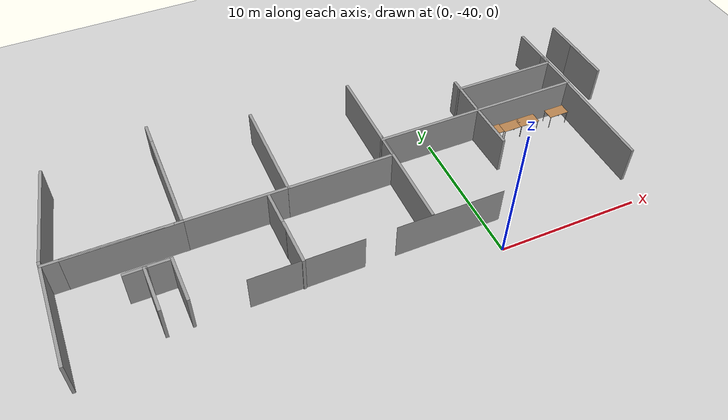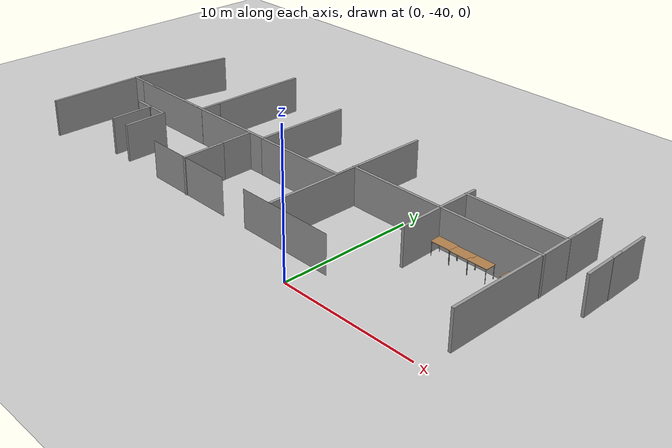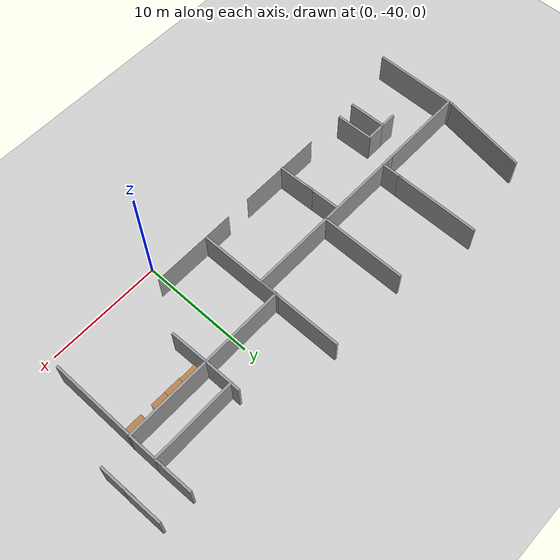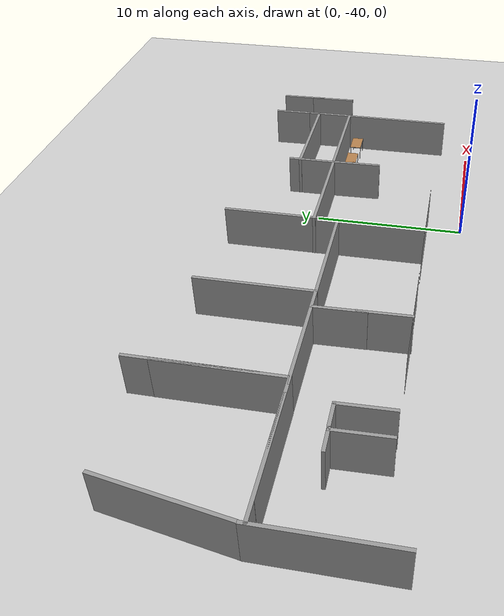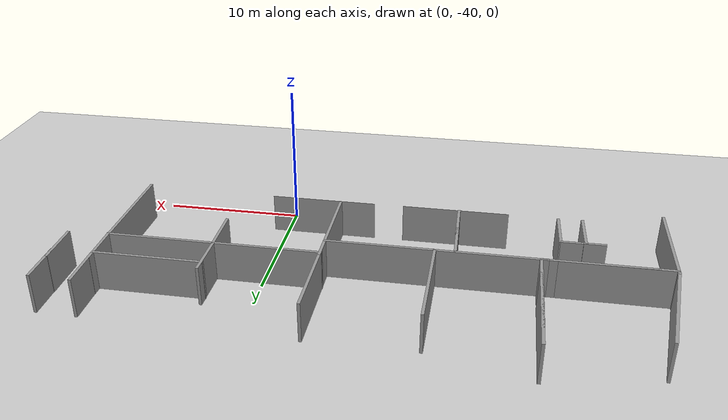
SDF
<sdf version="1.7">
 <world name="default">
  <model name="ground_plane">
   <static>1</static>
   <link name="link">
    <collision name="collision">
     <geometry><plane><normal>0 0 1</normal><size>100 100</size></plane></geometry>
     <surface>
      <contact><collide_bitmask>65535</collide_bitmask></contact>
      <friction><ode><mu>100</mu><mu2>50</mu2></ode></friction>
     </surface>
    </collision>
    <visual name="visual">
     <cast_shadows>0</cast_shadows>
     <geometry><plane><normal>0 0 1</normal><size>100 100</size></plane></geometry>
     <material>
      <script><uri>file://media/materials/scripts/gazebo.material</uri><name>Gazebo/Grey</name></script>
     </material>
    </visual>
   </link>
  </model>
  <model name="grey_wall_clone_4_clone_0_clone_clone_clone_0">
   <static>1</static>
   <link name="link">
    <pose>0 0 1.4 0 -0 0</pose>
    <collision name="collision"><geometry><box><size>7.5 0.2 2.8</size></box></geometry></collision>
    <visual name="visual">
     <cast_shadows>0</cast_shadows>
     <geometry><box><size>7.5 0.2 2.8</size></box></geometry>
     <material>
      <script>
       <uri>model://grey_wall/materials/scripts</uri>
       <uri>model://grey_wall/materials/textures</uri>
       <name>vrc/grey_wall</name>
      </script>
     </material>
    </visual>
   </link>
   <pose>-26.0476 -27.9911 0 0 -0 1.40189</pose>
  </model>
  <model name="grey_wall_0">
   <static>1</static>
   <link name="link">
    <pose>0 0 1.4 0 -0 0</pose>
    <collision name="collision"><geometry><box><size>7.5 0.2 2.8</size></box></geometry></collision>
    <visual name="visual">
     <cast_shadows>0</cast_shadows>
     <geometry><box><size>7.5 0.2 2.8</size></box></geometry>
     <material>
      <script>
       <uri>model://grey_wall/materials/scripts</uri>
       <uri>model://grey_wall/materials/textures</uri>
       <name>vrc/grey_wall</name>
      </script>
     </material>
    </visual>
   </link>
   <pose>-26.6933 -35.4117 0 0 -0 1.5708</pose>
  </model>
  <model name="grey_wall_1">
   <static>1</static>
   <link name="link">
    <pose>0 0 1.4 0 -0 0</pose>
    <collision name="collision"><geometry><box><size>7.5 0.2 2.8</size></box></geometry></collision>
    <visual name="visual">
     <cast_shadows>0</cast_shadows>
     <geometry><box><size>7.5 0.2 2.8</size></box></geometry>
     <material>
      <script>
       <uri>model://grey_wall/materials/scripts</uri>
       <uri>model://grey_wall/materials/textures</uri>
       <name>vrc/grey_wall</name>
      </script>
     </material>
    </visual>
   </link>
   <pose>-23.0024 -32.0318 0 0 -0 0</pose>
  </model>
  <model name="grey_wall_1_clone">
   <static>1</static>
   <link name="link">
    <pose>0 0 1.4 0 -0 0</pose>
    <collision name="collision"><geometry><box><size>7.5 0.2 2.8</size></box></geometry></collision>
    <visual name="visual">
     <cast_shadows>0</cast_shadows>
     <geometry><box><size>7.5 0.2 2.8</size></box></geometry>
     <material>
      <script>
       <uri>model://grey_wall/materials/scripts</uri>
       <uri>model://grey_wall/materials/textures</uri>
       <name>vrc/grey_wall</name>
      </script>
     </material>
    </visual>
   </link>
   <pose>-21.8571 -32.0378 0 0 -0 0</pose>
  </model>
  <model name="grey_wall_0_clone_clone">
   <static>1</static>
   <link name="link">
    <pose>0 0 1.4 0 -0 0</pose>
    <collision name="collision"><geometry><box><size>7.5 0.2 2.8</size></box></geometry></collision>
    <visual name="visual">
     <cast_shadows>0</cast_shadows>
     <geometry><box><size>7.5 0.2 2.8</size></box></geometry>
     <material>
      <script>
       <uri>model://grey_wall/materials/scripts</uri>
       <uri>model://grey_wall/materials/textures</uri>
       <name>vrc/grey_wall</name>
      </script>
     </material>
    </visual>
   </link>
   <pose>-18.1917 -28.2741 0 0 -0 1.5708</pose>
  </model>
  <model name="grey_wall_1_clone_clone">
   <static>1</static>
   <link name="link">
    <pose>0 0 1.4 0 -0 0</pose>
    <collision name="collision"><geometry><box><size>7.5 0.2 2.8</size></box></geometry></collision>
    <visual name="visual">
     <cast_shadows>0</cast_shadows>
     <geometry><box><size>7.5 0.2 2.8</size></box></geometry>
     <material>
      <script>
       <uri>model://grey_wall/materials/scripts</uri>
       <uri>model://grey_wall/materials/textures</uri>
       <name>vrc/grey_wall</name>
      </script>
     </material>
    </visual>
   </link>
   <pose>-14.9465 -32.0283 0 0 -0 0</pose>
  </model>
  <model name="grey_wall_0_clone_clone_clone">
   <static>1</static>
   <link name="link">
    <pose>0 0 1.4 0 -0 0</pose>
    <collision name="collision"><geometry><box><size>7.5 0.2 2.8</size></box></geometry></collision>
    <visual name="visual">
     <cast_shadows>0</cast_shadows>
     <geometry><box><size>7.5 0.2 2.8</size></box></geometry>
     <material>
      <script>
       <uri>model://grey_wall/materials/scripts</uri>
       <uri>model://grey_wall/materials/textures</uri>
       <name>vrc/grey_wall</name>
      </script>
     </material>
    </visual>
   </link>
   <pose>-11.3122 -28.3763 0 0 -0 1.5708</pose>
  </model>
  <model name="grey_wall_1_clone_clone_clone">
   <static>1</static>
   <link name="link">
    <pose>0 0 1.4 0 -0 0</pose>
    <collision name="collision"><geometry><box><size>7.5 0.2 2.8</size></box></geometry></collision>
    <visual name="visual">
     <cast_shadows>0</cast_shadows>
     <geometry><box><size>7.5 0.2 2.8</size></box></geometry>
     <material>
      <script>
       <uri>model://grey_wall/materials/scripts</uri>
       <uri>model://grey_wall/materials/textures</uri>
       <name>vrc/grey_wall</name>
      </script>
     </material>
    </visual>
   </link>
   <pose>-7.60364 -32.0391 0 0 -0 0</pose>
  </model>
  <model name="grey_wall_0_clone_clone_clone_1_clone">
   <static>1</static>
   <link name="link">
    <pose>0 0 1.4 0 -0 0</pose>
    <collision name="collision"><geometry><box><size>7.5 0.2 2.8</size></box></geometry></collision>
    <visual name="visual">
     <cast_shadows>0</cast_shadows>
     <geometry><box><size>7.5 0.2 2.8</size></box></geometry>
     <material>
      <script>
       <uri>model://grey_wall/materials/scripts</uri>
       <uri>model://grey_wall/materials/textures</uri>
       <name>vrc/grey_wall</name>
      </script>
     </material>
    </visual>
   </link>
   <pose>-3.96417 -28.2463 0 0 -0 1.5708</pose>
  </model>
  <model name="grey_wall_0_clone_clone_clone_0">
   <static>1</static>
   <link name="link">
    <pose>0 0 1.4 0 -0 0</pose>
    <collision name="collision"><geometry><box><size>7.5 0.2 2.8</size></box></geometry></collision>
    <visual name="visual">
     <cast_shadows>0</cast_shadows>
     <geometry><box><size>7.5 0.2 2.8</size></box></geometry>
     <material>
      <script>
       <uri>model://grey_wall/materials/scripts</uri>
       <uri>model://grey_wall/materials/textures</uri>
       <name>vrc/grey_wall</name>
      </script>
     </material>
    </visual>
   </link>
   <pose>-18.1803 -26.7144 0 0 -0 1.5708</pose>
  </model>
  <model name="grey_wall_1_clone_clone_clone_clone">
   <static>1</static>
   <link name="link">
    <pose>0 0 1.4 0 -0 0</pose>
    <collision name="collision"><geometry><box><size>7.5 0.2 2.8</size></box></geometry></collision>
    <visual name="visual">
     <cast_shadows>0</cast_shadows>
     <geometry><box><size>7.5 0.2 2.8</size></box></geometry>
     <material>
      <script>
       <uri>model://grey_wall/materials/scripts</uri>
       <uri>model://grey_wall/materials/textures</uri>
       <name>vrc/grey_wall</name>
      </script>
     </material>
    </visual>
   </link>
   <pose>-0.339107 -30.4881 0 0 -0 0</pose>
  </model>
  <model name="half_grey_wall_clone_clone_clone_clone">
   <link name="link">
    <pose>0 0 1.4 0 -0 0</pose>
    <inertial>
     <mass>1</mass>
     <inertia><ixx>1</ixx><ixy>0</ixy><ixz>0</ixz><iyy>1</iyy><iyz>0</iyz><izz>1</izz></inertia>
    </inertial>
    <visual name="visual">
     <cast_shadows>0</cast_shadows>
     <geometry><box><size>3.3 0.2 2.8</size></box></geometry>
     <material>
      <script>
       <uri>model://grey_wall/materials/scripts</uri>
       <uri>model://grey_wall/materials/textures</uri>
       <name>vrc/grey_wall</name>
      </script>
      <shader type="pixel"><normal_map>__default__</normal_map></shader>
      <ambient>1 1 1 1</ambient>
      <diffuse>1 1 1 1</diffuse>
      <specular>0 0 0 1</specular>
      <emissive>0 0 0 1</emissive>
     </material>
    </visual>
    <collision name="collision">
     <geometry><box><size>7.5 0.2 2.8</size></box></geometry>
     <surface>
      <friction>
       <ode><mu>1</mu><mu2>1</mu2><fdir1>0 0 0</fdir1><slip1>0</slip1><slip2>0</slip2></ode>
       <torsional>
        <coefficient>1</coefficient>
        <patch_radius>0</patch_radius>
        <surface_radius>0</surface_radius>
        <use_patch_radius>1</use_patch_radius>
        <ode><slip>0</slip></ode>
       </torsional>
      </friction>
      <bounce><restitution_coefficient>0</restitution_coefficient><threshold>1e+06</threshold></bounce>
      <contact>
       <collide_without_contact>0</collide_without_contact>
       <collide_without_contact_bitmask>1</collide_without_contact_bitmask>
       <collide_bitmask>1</collide_bitmask>
       <ode>
        <soft_cfm>0</soft_cfm>
        <soft_erp>0.2</soft_erp>
        <kp>1e+13</kp>
        <kd>1</kd>
        <max_vel>0.01</max_vel>
        <min_depth>0</min_depth>
       </ode>
       <bullet>
        <split_impulse>1</split_impulse>
        <split_impulse_penetration_threshold>-0.01</split_impulse_penetration_threshold>
        <soft_cfm>0</soft_cfm>
        <soft_erp>0.2</soft_erp>
        <kp>1e+13</kp>
        <kd>1</kd>
       </bullet>
      </contact>
     </surface>
    </collision>
   </link>
   <static>1</static>
   <pose>3.29729 -28.8904 0 0 0 -1.56862</pose>
  </model>
  <model name="grey_wall_1_clone_clone_clone_clone_clone">
   <static>1</static>
   <link name="link">
    <pose>0 0 1.4 0 -0 0</pose>
    <collision name="collision"><geometry><box><size>7.5 0.2 2.8</size></box></geometry></collision>
    <visual name="visual">
     <cast_shadows>0</cast_shadows>
     <geometry><box><size>7.5 0.2 2.8</size></box></geometry>
     <material>
      <script>
       <uri>model://grey_wall/materials/scripts</uri>
       <uri>model://grey_wall/materials/textures</uri>
       <name>vrc/grey_wall</name>
      </script>
     </material>
    </visual>
   </link>
   <pose>7.06177 -30.4838 0 0 -0 0</pose>
  </model>
  <model name="grey_wall_1_clone_clone_clone_clone_clone_clone">
   <static>1</static>
   <link name="link">
    <pose>0 0 1.4 0 -0 0</pose>
    <collision name="collision"><geometry><box><size>7.5 0.2 2.8</size></box></geometry></collision>
    <visual name="visual">
     <cast_shadows>0</cast_shadows>
     <geometry><box><size>7.5 0.2 2.8</size></box></geometry>
     <material>
      <script>
       <uri>model://grey_wall/materials/scripts</uri>
       <uri>model://grey_wall/materials/textures</uri>
       <name>vrc/grey_wall</name>
      </script>
     </material>
    </visual>
   </link>
   <pose>6.92384 -28.0433 0 0 -0 0</pose>
  </model>
  <model name="half_grey_wall_clone_clone_0_clone_2">
   <link name="link">
    <pose>0 0 1.4 0 -0 0</pose>
    <inertial>
     <mass>1</mass>
     <inertia><ixx>1</ixx><ixy>0</ixy><ixz>0</ixz><iyy>1</iyy><iyz>0</iyz><izz>1</izz></inertia>
    </inertial>
    <visual name="visual">
     <cast_shadows>0</cast_shadows>
     <geometry><box><size>3.3 0.2 2.8</size></box></geometry>
     <material>
      <script>
       <uri>model://grey_wall/materials/scripts</uri>
       <uri>model://grey_wall/materials/textures</uri>
       <name>vrc/grey_wall</name>
      </script>
      <shader type="pixel"><normal_map>__default__</normal_map></shader>
      <ambient>1 1 1 1</ambient>
      <diffuse>1 1 1 1</diffuse>
      <specular>0 0 0 1</specular>
      <emissive>0 0 0 1</emissive>
     </material>
    </visual>
    <collision name="collision">
     <geometry><box><size>7.5 0.2 2.8</size></box></geometry>
     <surface>
      <friction>
       <ode><mu>1</mu><mu2>1</mu2><fdir1>0 0 0</fdir1><slip1>0</slip1><slip2>0</slip2></ode>
       <torsional>
        <coefficient>1</coefficient>
        <patch_radius>0</patch_radius>
        <surface_radius>0</surface_radius>
        <use_patch_radius>1</use_patch_radius>
        <ode><slip>0</slip></ode>
       </torsional>
      </friction>
      <bounce><restitution_coefficient>0</restitution_coefficient><threshold>1e+06</threshold></bounce>
      <contact>
       <collide_without_contact>0</collide_without_contact>
       <collide_without_contact_bitmask>1</collide_without_contact_bitmask>
       <collide_bitmask>1</collide_bitmask>
       <ode>
        <soft_cfm>0</soft_cfm>
        <soft_erp>0.2</soft_erp>
        <kp>1e+13</kp>
        <kd>1</kd>
        <max_vel>0.01</max_vel>
        <min_depth>0</min_depth>
       </ode>
       <bullet>
        <split_impulse>1</split_impulse>
        <split_impulse_penetration_threshold>-0.01</split_impulse_penetration_threshold>
        <soft_cfm>0</soft_cfm>
        <soft_erp>0.2</soft_erp>
        <kp>1e+13</kp>
        <kd>1</kd>
       </bullet>
      </contact>
     </surface>
    </collision>
   </link>
   <static>1</static>
   <pose>10.6733 -28.9112 0 0 0 -1.55647</pose>
  </model>
  <model name="grey_wall_0_clone_clone_clone_0_clone">
   <static>1</static>
   <link name="link">
    <pose>0 0 1.4 0 -0 0</pose>
    <collision name="collision"><geometry><box><size>7.5 0.2 2.8</size></box></geometry></collision>
    <visual name="visual">
     <cast_shadows>0</cast_shadows>
     <geometry><box><size>7.5 0.2 2.8</size></box></geometry>
     <material>
      <script>
       <uri>model://grey_wall/materials/scripts</uri>
       <uri>model://grey_wall/materials/textures</uri>
       <name>vrc/grey_wall</name>
      </script>
     </material>
    </visual>
   </link>
   <pose>10.6732 -34.2817 0 0 -0 1.5708</pose>
  </model>
  <model name="table">
   <static>1</static>
   <link name="link">
    <collision name="surface">
     <pose>0 0 1 0 -0 0</pose>
     <geometry><box><size>1.5 0.8 0.03</size></box></geometry>
     <surface><friction><ode><mu>0.6</mu><mu2>0.6</mu2></ode></friction></surface>
    </collision>
    <visual name="visual1">
     <pose>0 0 1 0 -0 0</pose>
     <geometry><box><size>1.5 0.8 0.03</size></box></geometry>
     <material>
      <script><uri>file://media/materials/scripts/gazebo.material</uri><name>Gazebo/Wood</name></script>
     </material>
    </visual>
    <collision name="front_left_leg">
     <pose>0.68 0.38 0.5 0 -0 0</pose>
     <geometry><cylinder><radius>0.02</radius><length>1</length></cylinder></geometry>
    </collision>
    <visual name="front_left_leg">
     <pose>0.68 0.38 0.5 0 -0 0</pose>
     <geometry><cylinder><radius>0.02</radius><length>1</length></cylinder></geometry>
     <material>
      <script><uri>file://media/materials/scripts/gazebo.material</uri><name>Gazebo/Grey</name></script>
     </material>
    </visual>
    <collision name="front_right_leg">
     <pose>0.68 -0.38 0.5 0 -0 0</pose>
     <geometry><cylinder><radius>0.02</radius><length>1</length></cylinder></geometry>
    </collision>
    <visual name="front_right_leg">
     <pose>0.68 -0.38 0.5 0 -0 0</pose>
     <geometry><cylinder><radius>0.02</radius><length>1</length></cylinder></geometry>
     <material>
      <script><uri>file://media/materials/scripts/gazebo.material</uri><name>Gazebo/Grey</name></script>
     </material>
    </visual>
    <collision name="back_right_leg">
     <pose>-0.68 -0.38 0.5 0 -0 0</pose>
     <geometry><cylinder><radius>0.02</radius><length>1</length></cylinder></geometry>
    </collision>
    <visual name="back_right_leg">
     <pose>-0.68 -0.38 0.5 0 -0 0</pose>
     <geometry><cylinder><radius>0.02</radius><length>1</length></cylinder></geometry>
     <material>
      <script><uri>file://media/materials/scripts/gazebo.material</uri><name>Gazebo/Grey</name></script>
     </material>
    </visual>
    <collision name="back_left_leg">
     <pose>-0.68 0.38 0.5 0 -0 0</pose>
     <geometry><cylinder><radius>0.02</radius><length>1</length></cylinder></geometry>
    </collision>
    <visual name="back_left_leg">
     <pose>-0.68 0.38 0.5 0 -0 0</pose>
     <geometry><cylinder><radius>0.02</radius><length>1</length></cylinder></geometry>
     <material>
      <script><uri>file://media/materials/scripts/gazebo.material</uri><name>Gazebo/Grey</name></script>
     </material>
    </visual>
   </link>
   <pose>4.37833 -31.1782 0 0 -0 0</pose>
  </model>
  <model name="table_clone">
   <static>1</static>
   <link name="link">
    <collision name="surface">
     <pose>0 0 1 0 -0 0</pose>
     <geometry><box><size>1.5 0.8 0.03</size></box></geometry>
     <surface><friction><ode><mu>0.6</mu><mu2>0.6</mu2></ode></friction></surface>
    </collision>
    <visual name="visual1">
     <pose>0 0 1 0 -0 0</pose>
     <geometry><box><size>1.5 0.8 0.03</size></box></geometry>
     <material>
      <script><uri>file://media/materials/scripts/gazebo.material</uri><name>Gazebo/Wood</name></script>
     </material>
    </visual>
    <collision name="front_left_leg">
     <pose>0.68 0.38 0.5 0 -0 0</pose>
     <geometry><cylinder><radius>0.02</radius><length>1</length></cylinder></geometry>
    </collision>
    <visual name="front_left_leg">
     <pose>0.68 0.38 0.5 0 -0 0</pose>
     <geometry><cylinder><radius>0.02</radius><length>1</length></cylinder></geometry>
     <material>
      <script><uri>file://media/materials/scripts/gazebo.material</uri><name>Gazebo/Grey</name></script>
     </material>
    </visual>
    <collision name="front_right_leg">
     <pose>0.68 -0.38 0.5 0 -0 0</pose>
     <geometry><cylinder><radius>0.02</radius><length>1</length></cylinder></geometry>
    </collision>
    <visual name="front_right_leg">
     <pose>0.68 -0.38 0.5 0 -0 0</pose>
     <geometry><cylinder><radius>0.02</radius><length>1</length></cylinder></geometry>
     <material>
      <script><uri>file://media/materials/scripts/gazebo.material</uri><name>Gazebo/Grey</name></script>
     </material>
    </visual>
    <collision name="back_right_leg">
     <pose>-0.68 -0.38 0.5 0 -0 0</pose>
     <geometry><cylinder><radius>0.02</radius><length>1</length></cylinder></geometry>
    </collision>
    <visual name="back_right_leg">
     <pose>-0.68 -0.38 0.5 0 -0 0</pose>
     <geometry><cylinder><radius>0.02</radius><length>1</length></cylinder></geometry>
     <material>
      <script><uri>file://media/materials/scripts/gazebo.material</uri><name>Gazebo/Grey</name></script>
     </material>
    </visual>
    <collision name="back_left_leg">
     <pose>-0.68 0.38 0.5 0 -0 0</pose>
     <geometry><cylinder><radius>0.02</radius><length>1</length></cylinder></geometry>
    </collision>
    <visual name="back_left_leg">
     <pose>-0.68 0.38 0.5 0 -0 0</pose>
     <geometry><cylinder><radius>0.02</radius><length>1</length></cylinder></geometry>
     <material>
      <script><uri>file://media/materials/scripts/gazebo.material</uri><name>Gazebo/Grey</name></script>
     </material>
    </visual>
   </link>
   <pose>5.83379 -31.2407 0 0 -0 0</pose>
  </model>
  <model name="table_clone_0">
   <static>1</static>
   <link name="link">
    <collision name="surface">
     <pose>0 0 1 0 -0 0</pose>
     <geometry><box><size>1.5 0.8 0.03</size></box></geometry>
     <surface><friction><ode><mu>0.6</mu><mu2>0.6</mu2></ode></friction></surface>
    </collision>
    <visual name="visual1">
     <pose>0 0 1 0 -0 0</pose>
     <geometry><box><size>1.5 0.8 0.03</size></box></geometry>
     <material>
      <script><uri>file://media/materials/scripts/gazebo.material</uri><name>Gazebo/Wood</name></script>
     </material>
    </visual>
    <collision name="front_left_leg">
     <pose>0.68 0.38 0.5 0 -0 0</pose>
     <geometry><cylinder><radius>0.02</radius><length>1</length></cylinder></geometry>
    </collision>
    <visual name="front_left_leg">
     <pose>0.68 0.38 0.5 0 -0 0</pose>
     <geometry><cylinder><radius>0.02</radius><length>1</length></cylinder></geometry>
     <material>
      <script><uri>file://media/materials/scripts/gazebo.material</uri><name>Gazebo/Grey</name></script>
     </material>
    </visual>
    <collision name="front_right_leg">
     <pose>0.68 -0.38 0.5 0 -0 0</pose>
     <geometry><cylinder><radius>0.02</radius><length>1</length></cylinder></geometry>
    </collision>
    <visual name="front_right_leg">
     <pose>0.68 -0.38 0.5 0 -0 0</pose>
     <geometry><cylinder><radius>0.02</radius><length>1</length></cylinder></geometry>
     <material>
      <script><uri>file://media/materials/scripts/gazebo.material</uri><name>Gazebo/Grey</name></script>
     </material>
    </visual>
    <collision name="back_right_leg">
     <pose>-0.68 -0.38 0.5 0 -0 0</pose>
     <geometry><cylinder><radius>0.02</radius><length>1</length></cylinder></geometry>
    </collision>
    <visual name="back_right_leg">
     <pose>-0.68 -0.38 0.5 0 -0 0</pose>
     <geometry><cylinder><radius>0.02</radius><length>1</length></cylinder></geometry>
     <material>
      <script><uri>file://media/materials/scripts/gazebo.material</uri><name>Gazebo/Grey</name></script>
     </material>
    </visual>
    <collision name="back_left_leg">
     <pose>-0.68 0.38 0.5 0 -0 0</pose>
     <geometry><cylinder><radius>0.02</radius><length>1</length></cylinder></geometry>
    </collision>
    <visual name="back_left_leg">
     <pose>-0.68 0.38 0.5 0 -0 0</pose>
     <geometry><cylinder><radius>0.02</radius><length>1</length></cylinder></geometry>
     <material>
      <script><uri>file://media/materials/scripts/gazebo.material</uri><name>Gazebo/Grey</name></script>
     </material>
    </visual>
   </link>
   <pose>7.16269 -31.2407 0 0 -0 0</pose>
  </model>
  <model name="table_clone_0_clone">
   <static>1</static>
   <link name="link">
    <collision name="surface">
     <pose>0 0 1 0 -0 0</pose>
     <geometry><box><size>1.5 0.8 0.03</size></box></geometry>
     <surface><friction><ode><mu>0.6</mu><mu2>0.6</mu2></ode></friction></surface>
    </collision>
    <visual name="visual1">
     <pose>0 0 1 0 -0 0</pose>
     <geometry><box><size>1.5 0.8 0.03</size></box></geometry>
     <material>
      <script><uri>file://media/materials/scripts/gazebo.material</uri><name>Gazebo/Wood</name></script>
     </material>
    </visual>
    <collision name="front_left_leg">
     <pose>0.68 0.38 0.5 0 -0 0</pose>
     <geometry><cylinder><radius>0.02</radius><length>1</length></cylinder></geometry>
    </collision>
    <visual name="front_left_leg">
     <pose>0.68 0.38 0.5 0 -0 0</pose>
     <geometry><cylinder><radius>0.02</radius><length>1</length></cylinder></geometry>
     <material>
      <script><uri>file://media/materials/scripts/gazebo.material</uri><name>Gazebo/Grey</name></script>
     </material>
    </visual>
    <collision name="front_right_leg">
     <pose>0.68 -0.38 0.5 0 -0 0</pose>
     <geometry><cylinder><radius>0.02</radius><length>1</length></cylinder></geometry>
    </collision>
    <visual name="front_right_leg">
     <pose>0.68 -0.38 0.5 0 -0 0</pose>
     <geometry><cylinder><radius>0.02</radius><length>1</length></cylinder></geometry>
     <material>
      <script><uri>file://media/materials/scripts/gazebo.material</uri><name>Gazebo/Grey</name></script>
     </material>
    </visual>
    <collision name="back_right_leg">
     <pose>-0.68 -0.38 0.5 0 -0 0</pose>
     <geometry><cylinder><radius>0.02</radius><length>1</length></cylinder></geometry>
    </collision>
    <visual name="back_right_leg">
     <pose>-0.68 -0.38 0.5 0 -0 0</pose>
     <geometry><cylinder><radius>0.02</radius><length>1</length></cylinder></geometry>
     <material>
      <script><uri>file://media/materials/scripts/gazebo.material</uri><name>Gazebo/Grey</name></script>
     </material>
    </visual>
    <collision name="back_left_leg">
     <pose>-0.68 0.38 0.5 0 -0 0</pose>
     <geometry><cylinder><radius>0.02</radius><length>1</length></cylinder></geometry>
    </collision>
    <visual name="back_left_leg">
     <pose>-0.68 0.38 0.5 0 -0 0</pose>
     <geometry><cylinder><radius>0.02</radius><length>1</length></cylinder></geometry>
     <material>
      <script><uri>file://media/materials/scripts/gazebo.material</uri><name>Gazebo/Grey</name></script>
     </material>
    </visual>
   </link>
   <pose>9.61483 -31.2737 0 0 -0 0</pose>
  </model>
  <model name="grey_wall_0_clone_clone_clone_0_clone_0">
   <static>1</static>
   <link name="link">
    <pose>0 0 1.4 0 -0 0</pose>
    <collision name="collision"><geometry><box><size>7.5 0.2 2.8</size></box></geometry></collision>
    <visual name="visual">
     <cast_shadows>0</cast_shadows>
     <geometry><box><size>7.5 0.2 2.8</size></box></geometry>
     <material>
      <script>
       <uri>model://grey_wall/materials/scripts</uri>
       <uri>model://grey_wall/materials/textures</uri>
       <name>vrc/grey_wall</name>
      </script>
     </material>
    </visual>
   </link>
   <pose>-3.9525 -33.9249 0 0 -0 1.5708</pose>
  </model>
  <model name="slim_grey_wall">
   <link name="link">
    <pose>0 0 1.4 0 -0 0</pose>
    <inertial>
     <mass>1</mass>
     <inertia><ixx>1</ixx><ixy>0</ixy><ixz>0</ixz><iyy>1</iyy><iyz>0</iyz><izz>1</izz></inertia>
    </inertial>
    <visual name="visual">
     <cast_shadows>0</cast_shadows>
     <geometry><box><size>7.5 0.0001 2.8</size></box></geometry>
     <material>
      <script>
       <uri>model://grey_wall/materials/scripts</uri>
       <uri>model://grey_wall/materials/textures</uri>
       <name>vrc/grey_wall</name>
      </script>
      <shader type="pixel"><normal_map>__default__</normal_map></shader>
      <ambient>1 1 1 1</ambient>
      <diffuse>1 1 1 1</diffuse>
      <specular>0 0 0 1</specular>
      <emissive>0 0 0 1</emissive>
     </material>
    </visual>
    <collision name="collision">
     <geometry><box><size>7.5 0.2 2.8</size></box></geometry>
     <surface>
      <friction>
       <ode><mu>1</mu><mu2>1</mu2><fdir1>0 0 0</fdir1><slip1>0</slip1><slip2>0</slip2></ode>
       <torsional>
        <coefficient>1</coefficient>
        <patch_radius>0</patch_radius>
        <surface_radius>0</surface_radius>
        <use_patch_radius>1</use_patch_radius>
        <ode><slip>0</slip></ode>
       </torsional>
      </friction>
      <bounce><restitution_coefficient>0</restitution_coefficient><threshold>1e+06</threshold></bounce>
      <contact>
       <collide_without_contact>0</collide_without_contact>
       <collide_without_contact_bitmask>1</collide_without_contact_bitmask>
       <collide_bitmask>1</collide_bitmask>
       <ode>
        <soft_cfm>0</soft_cfm>
        <soft_erp>0.2</soft_erp>
        <kp>1e+13</kp>
        <kd>1</kd>
        <max_vel>0.01</max_vel>
        <min_depth>0</min_depth>
       </ode>
       <bullet>
        <split_impulse>1</split_impulse>
        <split_impulse_penetration_threshold>-0.01</split_impulse_penetration_threshold>
        <soft_cfm>0</soft_cfm>
        <soft_erp>0.2</soft_erp>
        <kp>1e+13</kp>
        <kd>1</kd>
       </bullet>
      </contact>
     </surface>
    </collision>
   </link>
   <static>1</static>
   <pose>-2.6753 -37.7102 0 0 -0 0</pose>
  </model>
  <model name="slim_grey_wall_clone">
   <link name="link">
    <pose>0 0 1.4 0 -0 0</pose>
    <inertial>
     <mass>1</mass>
     <inertia><ixx>1</ixx><ixy>0</ixy><ixz>0</ixz><iyy>1</iyy><iyz>0</iyz><izz>1</izz></inertia>
    </inertial>
    <visual name="visual">
     <cast_shadows>0</cast_shadows>
     <geometry><box><size>7.5 0.0001 2.8</size></box></geometry>
     <material>
      <script>
       <uri>model://grey_wall/materials/scripts</uri>
       <uri>model://grey_wall/materials/textures</uri>
       <name>vrc/grey_wall</name>
      </script>
      <shader type="pixel"><normal_map>__default__</normal_map></shader>
      <ambient>1 1 1 1</ambient>
      <diffuse>1 1 1 1</diffuse>
      <specular>0 0 0 1</specular>
      <emissive>0 0 0 1</emissive>
     </material>
    </visual>
    <collision name="collision">
     <geometry><box><size>7.5 0.2 2.8</size></box></geometry>
     <surface>
      <friction>
       <ode><mu>1</mu><mu2>1</mu2><fdir1>0 0 0</fdir1><slip1>0</slip1><slip2>0</slip2></ode>
       <torsional>
        <coefficient>1</coefficient>
        <patch_radius>0</patch_radius>
        <surface_radius>0</surface_radius>
        <use_patch_radius>1</use_patch_radius>
        <ode><slip>0</slip></ode>
       </torsional>
      </friction>
      <bounce><restitution_coefficient>0</restitution_coefficient><threshold>1e+06</threshold></bounce>
      <contact>
       <collide_without_contact>0</collide_without_contact>
       <collide_without_contact_bitmask>1</collide_without_contact_bitmask>
       <collide_bitmask>1</collide_bitmask>
       <ode>
        <soft_cfm>0</soft_cfm>
        <soft_erp>0.2</soft_erp>
        <kp>1e+13</kp>
        <kd>1</kd>
        <max_vel>0.01</max_vel>
        <min_depth>0</min_depth>
       </ode>
       <bullet>
        <split_impulse>1</split_impulse>
        <split_impulse_penetration_threshold>-0.01</split_impulse_penetration_threshold>
        <soft_cfm>0</soft_cfm>
        <soft_erp>0.2</soft_erp>
        <kp>1e+13</kp>
        <kd>1</kd>
       </bullet>
      </contact>
     </surface>
    </collision>
   </link>
   <static>1</static>
   <pose>-12.2446 -37.7283 0 0 -0 0</pose>
  </model>
  <model name="half_grey_wall_clone_clone_0_clone_clone_clone_clone_0_clone_0_clone">
   <link name="link">
    <pose>0 0 1.4 0 -0 0</pose>
    <inertial>
     <mass>1</mass>
     <inertia><ixx>1</ixx><ixy>0</ixy><ixz>0</ixz><iyy>1</iyy><iyz>0</iyz><izz>1</izz></inertia>
    </inertial>
    <visual name="visual">
     <cast_shadows>0</cast_shadows>
     <geometry><box><size>3.3 0.2 2.8</size></box></geometry>
     <material>
      <script>
       <uri>model://grey_wall/materials/scripts</uri>
       <uri>model://grey_wall/materials/textures</uri>
       <name>vrc/grey_wall</name>
      </script>
      <shader type="pixel"><normal_map>__default__</normal_map></shader>
      <ambient>1 1 1 1</ambient>
      <diffuse>1 1 1 1</diffuse>
      <specular>0 0 0 1</specular>
      <emissive>0 0 0 1</emissive>
     </material>
    </visual>
    <collision name="collision">
     <geometry><box><size>3.3 0.2 2.8</size></box></geometry>
     <surface>
      <friction>
       <ode><mu>1</mu><mu2>1</mu2><fdir1>0 0 0</fdir1><slip1>0</slip1><slip2>0</slip2></ode>
       <torsional>
        <coefficient>1</coefficient>
        <patch_radius>0</patch_radius>
        <surface_radius>0</surface_radius>
        <use_patch_radius>1</use_patch_radius>
        <ode><slip>0</slip></ode>
       </torsional>
      </friction>
      <bounce><restitution_coefficient>0</restitution_coefficient><threshold>1e+06</threshold></bounce>
      <contact>
       <collide_without_contact>0</collide_without_contact>
       <collide_without_contact_bitmask>1</collide_without_contact_bitmask>
       <collide_bitmask>1</collide_bitmask>
       <ode>
        <soft_cfm>0</soft_cfm>
        <soft_erp>0.2</soft_erp>
        <kp>1e+13</kp>
        <kd>1</kd>
        <max_vel>0.01</max_vel>
        <min_depth>0</min_depth>
       </ode>
       <bullet>
        <split_impulse>1</split_impulse>
        <split_impulse_penetration_threshold>-0.01</split_impulse_penetration_threshold>
        <soft_cfm>0</soft_cfm>
        <soft_erp>0.2</soft_erp>
        <kp>1e+13</kp>
        <kd>1</kd>
       </bullet>
      </contact>
     </surface>
    </collision>
   </link>
   <static>1</static>
   <pose>-19.4585 -36.0861 -0 0 0 -1.5482</pose>
  </model>
  <model name="half_grey_wall_clone_clone_0_clone_clone_clone_clone_0_clone_0_clone_clone">
   <link name="link">
    <pose>0 0 1.4 0 -0 0</pose>
    <inertial>
     <mass>1</mass>
     <inertia><ixx>1</ixx><ixy>0</ixy><ixz>0</ixz><iyy>1</iyy><iyz>0</iyz><izz>1</izz></inertia>
    </inertial>
    <visual name="visual">
     <cast_shadows>0</cast_shadows>
     <geometry><box><size>3.3 0.2 2.8</size></box></geometry>
     <material>
      <script>
       <uri>model://grey_wall/materials/scripts</uri>
       <uri>model://grey_wall/materials/textures</uri>
       <name>vrc/grey_wall</name>
      </script>
      <shader type="pixel"><normal_map>__default__</normal_map></shader>
      <ambient>1 1 1 1</ambient>
      <diffuse>1 1 1 1</diffuse>
      <specular>0 0 0 1</specular>
      <emissive>0 0 0 1</emissive>
     </material>
    </visual>
    <collision name="collision">
     <geometry><box><size>3.3 0.2 2.8</size></box></geometry>
     <surface>
      <friction>
       <ode><mu>1</mu><mu2>1</mu2><fdir1>0 0 0</fdir1><slip1>0</slip1><slip2>0</slip2></ode>
       <torsional>
        <coefficient>1</coefficient>
        <patch_radius>0</patch_radius>
        <surface_radius>0</surface_radius>
        <use_patch_radius>1</use_patch_radius>
        <ode><slip>0</slip></ode>
       </torsional>
      </friction>
      <bounce><restitution_coefficient>0</restitution_coefficient><threshold>1e+06</threshold></bounce>
      <contact>
       <collide_without_contact>0</collide_without_contact>
       <collide_without_contact_bitmask>1</collide_without_contact_bitmask>
       <collide_bitmask>1</collide_bitmask>
       <ode>
        <soft_cfm>0</soft_cfm>
        <soft_erp>0.2</soft_erp>
        <kp>1e+13</kp>
        <kd>1</kd>
        <max_vel>0.01</max_vel>
        <min_depth>0</min_depth>
       </ode>
       <bullet>
        <split_impulse>1</split_impulse>
        <split_impulse_penetration_threshold>-0.01</split_impulse_penetration_threshold>
        <soft_cfm>0</soft_cfm>
        <soft_erp>0.2</soft_erp>
        <kp>1e+13</kp>
        <kd>1</kd>
       </bullet>
      </contact>
     </surface>
    </collision>
   </link>
   <static>1</static>
   <pose>-21.1131 -36.118 -0 0 0 -1.5482</pose>
  </model>
  <model name="half_grey_wall_clone_clone_clone_0_clone_clone_0_clone_clone_0_clone_0_clone_4_clone_clone">
   <link name="link">
    <pose>0 0 1.4 0 -0 0</pose>
    <inertial>
     <mass>1</mass>
     <inertia><ixx>1</ixx><ixy>0</ixy><ixz>0</ixz><iyy>1</iyy><iyz>0</iyz><izz>1</izz></inertia>
    </inertial>
    <visual name="visual">
     <cast_shadows>0</cast_shadows>
     <geometry><box><size>1.5 0.2 2.8</size></box></geometry>
     <material>
      <script>
       <uri>model://grey_wall/materials/scripts</uri>
       <uri>model://grey_wall/materials/textures</uri>
       <name>vrc/grey_wall</name>
      </script>
      <shader type="pixel"><normal_map>__default__</normal_map></shader>
      <ambient>1 1 1 1</ambient>
      <diffuse>1 1 1 1</diffuse>
      <specular>0 0 0 1</specular>
      <emissive>0 0 0 1</emissive>
     </material>
    </visual>
    <collision name="collision">
     <geometry><box><size>1.5 0.2 2.8</size></box></geometry>
     <surface>
      <friction>
       <ode><mu>1</mu><mu2>1</mu2><fdir1>0 0 0</fdir1><slip1>0</slip1><slip2>0</slip2></ode>
       <torsional>
        <coefficient>1</coefficient>
        <patch_radius>0</patch_radius>
        <surface_radius>0</surface_radius>
        <use_patch_radius>1</use_patch_radius>
        <ode><slip>0</slip></ode>
       </torsional>
      </friction>
      <bounce><restitution_coefficient>0</restitution_coefficient><threshold>1e+06</threshold></bounce>
      <contact>
       <collide_without_contact>0</collide_without_contact>
       <collide_without_contact_bitmask>1</collide_without_contact_bitmask>
       <collide_bitmask>1</collide_bitmask>
       <ode>
        <soft_cfm>0</soft_cfm>
        <soft_erp>0.2</soft_erp>
        <kp>1e+13</kp>
        <kd>1</kd>
        <max_vel>0.01</max_vel>
        <min_depth>0</min_depth>
       </ode>
       <bullet>
        <split_impulse>1</split_impulse>
        <split_impulse_penetration_threshold>-0.01</split_impulse_penetration_threshold>
        <soft_cfm>0</soft_cfm>
        <soft_erp>0.2</soft_erp>
        <kp>1e+13</kp>
        <kd>1</kd>
       </bullet>
      </contact>
     </surface>
    </collision>
   </link>
   <static>1</static>
   <pose>-20.2272 -34.5298 0 0 0 -3.13942</pose>
  </model>
  <model name="half_grey_wall_clone_clone_clone_0_clone_clone_0_clone_clone_0_clone_0_clone_4_clone_clone_0">
   <link name="link">
    <pose>0 0 1.4 0 -0 0</pose>
    <inertial>
     <mass>1</mass>
     <inertia><ixx>1</ixx><ixy>0</ixy><ixz>0</ixz><iyy>1</iyy><iyz>0</iyz><izz>1</izz></inertia>
    </inertial>
    <visual name="visual">
     <cast_shadows>0</cast_shadows>
     <geometry><box><size>1.5 0.2 2.8</size></box></geometry>
     <material>
      <script>
       <uri>model://grey_wall/materials/scripts</uri>
       <uri>model://grey_wall/materials/textures</uri>
       <name>vrc/grey_wall</name>
      </script>
      <shader type="pixel"><normal_map>__default__</normal_map></shader>
      <ambient>1 1 1 1</ambient>
      <diffuse>1 1 1 1</diffuse>
      <specular>0 0 0 1</specular>
      <emissive>0 0 0 1</emissive>
     </material>
    </visual>
    <collision name="collision">
     <geometry><box><size>1.5 0.2 2.8</size></box></geometry>
     <surface>
      <friction>
       <ode><mu>1</mu><mu2>1</mu2><fdir1>0 0 0</fdir1><slip1>0</slip1><slip2>0</slip2></ode>
       <torsional>
        <coefficient>1</coefficient>
        <patch_radius>0</patch_radius>
        <surface_radius>0</surface_radius>
        <use_patch_radius>1</use_patch_radius>
        <ode><slip>0</slip></ode>
       </torsional>
      </friction>
      <bounce><restitution_coefficient>0</restitution_coefficient><threshold>1e+06</threshold></bounce>
      <contact>
       <collide_without_contact>0</collide_without_contact>
       <collide_without_contact_bitmask>1</collide_without_contact_bitmask>
       <collide_bitmask>1</collide_bitmask>
       <ode>
        <soft_cfm>0</soft_cfm>
        <soft_erp>0.2</soft_erp>
        <kp>1e+13</kp>
        <kd>1</kd>
        <max_vel>0.01</max_vel>
        <min_depth>0</min_depth>
       </ode>
       <bullet>
        <split_impulse>1</split_impulse>
        <split_impulse_penetration_threshold>-0.01</split_impulse_penetration_threshold>
        <soft_cfm>0</soft_cfm>
        <soft_erp>0.2</soft_erp>
        <kp>1e+13</kp>
        <kd>1</kd>
       </bullet>
      </contact>
     </surface>
    </collision>
   </link>
   <static>1</static>
   <pose>-21.7416 -34.548 0 0 0 -3.13942</pose>
  </model>
  <model name="half_grey_wall_clone_clone_0_clone_clone_clone_clone_0_clone_0_clone_clone_1">
   <link name="link">
    <pose>0 0 1.4 0 -0 0</pose>
    <inertial>
     <mass>1</mass>
     <inertia><ixx>1</ixx><ixy>0</ixy><ixz>0</ixz><iyy>1</iyy><iyz>0</iyz><izz>1</izz></inertia>
    </inertial>
    <visual name="visual">
     <cast_shadows>0</cast_shadows>
     <geometry><box><size>3.3 0.2 2.8</size></box></geometry>
     <material>
      <script>
       <uri>model://grey_wall/materials/scripts</uri>
       <uri>model://grey_wall/materials/textures</uri>
       <name>vrc/grey_wall</name>
      </script>
      <shader type="pixel"><normal_map>__default__</normal_map></shader>
      <ambient>1 1 1 1</ambient>
      <diffuse>1 1 1 1</diffuse>
      <specular>0 0 0 1</specular>
      <emissive>0 0 0 1</emissive>
     </material>
    </visual>
    <collision name="collision">
     <geometry><box><size>3.3 0.2 2.8</size></box></geometry>
     <surface>
      <friction>
       <ode><mu>1</mu><mu2>1</mu2><fdir1>0 0 0</fdir1><slip1>0</slip1><slip2>0</slip2></ode>
       <torsional>
        <coefficient>1</coefficient>
        <patch_radius>0</patch_radius>
        <surface_radius>0</surface_radius>
        <use_patch_radius>1</use_patch_radius>
        <ode><slip>0</slip></ode>
       </torsional>
      </friction>
      <bounce><restitution_coefficient>0</restitution_coefficient><threshold>1e+06</threshold></bounce>
      <contact>
       <collide_without_contact>0</collide_without_contact>
       <collide_without_contact_bitmask>1</collide_without_contact_bitmask>
       <collide_bitmask>1</collide_bitmask>
       <ode>
        <soft_cfm>0</soft_cfm>
        <soft_erp>0.2</soft_erp>
        <kp>1e+13</kp>
        <kd>1</kd>
        <max_vel>0.01</max_vel>
        <min_depth>0</min_depth>
       </ode>
       <bullet>
        <split_impulse>1</split_impulse>
        <split_impulse_penetration_threshold>-0.01</split_impulse_penetration_threshold>
        <soft_cfm>0</soft_cfm>
        <soft_erp>0.2</soft_erp>
        <kp>1e+13</kp>
        <kd>1</kd>
       </bullet>
      </contact>
     </surface>
    </collision>
   </link>
   <static>1</static>
   <pose>3.34783 -32.1917 -0 0 0 -1.5482</pose>
  </model>
  <model name="half_grey_wall_clone_clone_0_clone_clone_clone_clone_0_clone_0_clone_clone_1_clone">
   <link name="link">
    <pose>0 0 1.4 0 -0 0</pose>
    <inertial>
     <mass>1</mass>
     <inertia><ixx>1</ixx><ixy>0</ixy><ixz>0</ixz><iyy>1</iyy><iyz>0</iyz><izz>1</izz></inertia>
    </inertial>
    <visual name="visual">
     <cast_shadows>0</cast_shadows>
     <geometry><box><size>3.3 0.2 2.8</size></box></geometry>
     <material>
      <script>
       <uri>model://grey_wall/materials/scripts</uri>
       <uri>model://grey_wall/materials/textures</uri>
       <name>vrc/grey_wall</name>
      </script>
      <shader type="pixel"><normal_map>__default__</normal_map></shader>
      <ambient>1 1 1 1</ambient>
      <diffuse>1 1 1 1</diffuse>
      <specular>0 0 0 1</specular>
      <emissive>0 0 0 1</emissive>
     </material>
    </visual>
    <collision name="collision">
     <geometry><box><size>3.3 0.2 2.8</size></box></geometry>
     <surface>
      <friction>
       <ode><mu>1</mu><mu2>1</mu2><fdir1>0 0 0</fdir1><slip1>0</slip1><slip2>0</slip2></ode>
       <torsional>
        <coefficient>1</coefficient>
        <patch_radius>0</patch_radius>
        <surface_radius>0</surface_radius>
        <use_patch_radius>1</use_patch_radius>
        <ode><slip>0</slip></ode>
       </torsional>
      </friction>
      <bounce><restitution_coefficient>0</restitution_coefficient><threshold>1e+06</threshold></bounce>
      <contact>
       <collide_without_contact>0</collide_without_contact>
       <collide_without_contact_bitmask>1</collide_without_contact_bitmask>
       <collide_bitmask>1</collide_bitmask>
       <ode>
        <soft_cfm>0</soft_cfm>
        <soft_erp>0.2</soft_erp>
        <kp>1e+13</kp>
        <kd>1</kd>
        <max_vel>0.01</max_vel>
        <min_depth>0</min_depth>
       </ode>
       <bullet>
        <split_impulse>1</split_impulse>
        <split_impulse_penetration_threshold>-0.01</split_impulse_penetration_threshold>
        <soft_cfm>0</soft_cfm>
        <soft_erp>0.2</soft_erp>
        <kp>1e+13</kp>
        <kd>1</kd>
       </bullet>
      </contact>
     </surface>
    </collision>
   </link>
   <static>1</static>
   <pose>10.6346 -26.264 -0 0 0 -1.5482</pose>
  </model>
  <model name="half_grey_wall_clone_clone_0_clone_clone_clone_clone_0_clone_0_clone_clone_1_clone_clone">
   <link name="link">
    <pose>0 0 1.4 0 -0 0</pose>
    <inertial>
     <mass>1</mass>
     <inertia><ixx>1</ixx><ixy>0</ixy><ixz>0</ixz><iyy>1</iyy><iyz>0</iyz><izz>1</izz></inertia>
    </inertial>
    <visual name="visual">
     <cast_shadows>0</cast_shadows>
     <geometry><box><size>3.3 0.2 2.8</size></box></geometry>
     <material>
      <script>
       <uri>model://grey_wall/materials/scripts</uri>
       <uri>model://grey_wall/materials/textures</uri>
       <name>vrc/grey_wall</name>
      </script>
      <shader type="pixel"><normal_map>__default__</normal_map></shader>
      <ambient>1 1 1 1</ambient>
      <diffuse>1 1 1 1</diffuse>
      <specular>0 0 0 1</specular>
      <emissive>0 0 0 1</emissive>
     </material>
    </visual>
    <collision name="collision">
     <geometry><box><size>3.3 0.2 2.8</size></box></geometry>
     <surface>
      <friction>
       <ode><mu>1</mu><mu2>1</mu2><fdir1>0 0 0</fdir1><slip1>0</slip1><slip2>0</slip2></ode>
       <torsional>
        <coefficient>1</coefficient>
        <patch_radius>0</patch_radius>
        <surface_radius>0</surface_radius>
        <use_patch_radius>1</use_patch_radius>
        <ode><slip>0</slip></ode>
       </torsional>
      </friction>
      <bounce><restitution_coefficient>0</restitution_coefficient><threshold>1e+06</threshold></bounce>
      <contact>
       <collide_without_contact>0</collide_without_contact>
       <collide_without_contact_bitmask>1</collide_without_contact_bitmask>
       <collide_bitmask>1</collide_bitmask>
       <ode>
        <soft_cfm>0</soft_cfm>
        <soft_erp>0.2</soft_erp>
        <kp>1e+13</kp>
        <kd>1</kd>
        <max_vel>0.01</max_vel>
        <min_depth>0</min_depth>
       </ode>
       <bullet>
        <split_impulse>1</split_impulse>
        <split_impulse_penetration_threshold>-0.01</split_impulse_penetration_threshold>
        <soft_cfm>0</soft_cfm>
        <soft_erp>0.2</soft_erp>
        <kp>1e+13</kp>
        <kd>1</kd>
       </bullet>
      </contact>
     </surface>
    </collision>
   </link>
   <static>1</static>
   <pose>13.4258 -26.3082 -0 0 0 -1.5482</pose>
  </model>
  <model name="half_grey_wall_clone_clone_0_clone_clone_clone_clone_0_clone_0_clone_clone_1_clone_clone_clone">
   <link name="link">
    <pose>0 0 1.4 0 -0 0</pose>
    <inertial>
     <mass>1</mass>
     <inertia><ixx>1</ixx><ixy>0</ixy><ixz>0</ixz><iyy>1</iyy><iyz>0</iyz><izz>1</izz></inertia>
    </inertial>
    <visual name="visual">
     <cast_shadows>0</cast_shadows>
     <geometry><box><size>3.3 0.2 2.8</size></box></geometry>
     <material>
      <script>
       <uri>model://grey_wall/materials/scripts</uri>
       <uri>model://grey_wall/materials/textures</uri>
       <name>vrc/grey_wall</name>
      </script>
      <shader type="pixel"><normal_map>__default__</normal_map></shader>
      <ambient>1 1 1 1</ambient>
      <diffuse>1 1 1 1</diffuse>
      <specular>0 0 0 1</specular>
      <emissive>0 0 0 1</emissive>
     </material>
    </visual>
    <collision name="collision">
     <geometry><box><size>3.3 0.2 2.8</size></box></geometry>
     <surface>
      <friction>
       <ode><mu>1</mu><mu2>1</mu2><fdir1>0 0 0</fdir1><slip1>0</slip1><slip2>0</slip2></ode>
       <torsional>
        <coefficient>1</coefficient>
        <patch_radius>0</patch_radius>
        <surface_radius>0</surface_radius>
        <use_patch_radius>1</use_patch_radius>
        <ode><slip>0</slip></ode>
       </torsional>
      </friction>
      <bounce><restitution_coefficient>0</restitution_coefficient><threshold>1e+06</threshold></bounce>
      <contact>
       <collide_without_contact>0</collide_without_contact>
       <collide_without_contact_bitmask>1</collide_without_contact_bitmask>
       <collide_bitmask>1</collide_bitmask>
       <ode>
        <soft_cfm>0</soft_cfm>
        <soft_erp>0.2</soft_erp>
        <kp>1e+13</kp>
        <kd>1</kd>
        <max_vel>0.01</max_vel>
        <min_depth>0</min_depth>
       </ode>
       <bullet>
        <split_impulse>1</split_impulse>
        <split_impulse_penetration_threshold>-0.01</split_impulse_penetration_threshold>
        <soft_cfm>0</soft_cfm>
        <soft_erp>0.2</soft_erp>
        <kp>1e+13</kp>
        <kd>1</kd>
       </bullet>
      </contact>
     </surface>
    </collision>
   </link>
   <static>1</static>
   <pose>13.4543 -28.6627 -0 0 0 -1.5482</pose>
  </model>
  <model name="half_grey_wall_clone_clone_0_clone_clone_clone_clone_0_clone_0_clone_clone_0">
   <link name="link">
    <pose>0 0 1.4 0 -0 0</pose>
    <inertial>
     <mass>1</mass>
     <inertia><ixx>1</ixx><ixy>0</ixy><ixz>0</ixz><iyy>1</iyy><iyz>0</iyz><izz>1</izz></inertia>
    </inertial>
    <visual name="visual">
     <cast_shadows>0</cast_shadows>
     <geometry><box><size>3.3 0.2 2.8</size></box></geometry>
     <material>
      <script>
       <uri>model://grey_wall/materials/scripts</uri>
       <uri>model://grey_wall/materials/textures</uri>
       <name>vrc/grey_wall</name>
      </script>
      <shader type="pixel"><normal_map>__default__</normal_map></shader>
      <ambient>1 1 1 1</ambient>
      <diffuse>1 1 1 1</diffuse>
      <specular>0 0 0 1</specular>
      <emissive>0 0 0 1</emissive>
     </material>
    </visual>
    <collision name="collision">
     <geometry><box><size>3.3 0.2 2.8</size></box></geometry>
     <surface>
      <friction>
       <ode><mu>1</mu><mu2>1</mu2><fdir1>0 0 0</fdir1><slip1>0</slip1><slip2>0</slip2></ode>
       <torsional>
        <coefficient>1</coefficient>
        <patch_radius>0</patch_radius>
        <surface_radius>0</surface_radius>
        <use_patch_radius>1</use_patch_radius>
        <ode><slip>0</slip></ode>
       </torsional>
      </friction>
      <bounce><restitution_coefficient>0</restitution_coefficient><threshold>1e+06</threshold></bounce>
      <contact>
       <collide_without_contact>0</collide_without_contact>
       <collide_without_contact_bitmask>1</collide_without_contact_bitmask>
       <collide_bitmask>1</collide_bitmask>
       <ode>
        <soft_cfm>0</soft_cfm>
        <soft_erp>0.2</soft_erp>
        <kp>1e+13</kp>
        <kd>1</kd>
        <max_vel>0.01</max_vel>
        <min_depth>0</min_depth>
       </ode>
       <bullet>
        <split_impulse>1</split_impulse>
        <split_impulse_penetration_threshold>-0.01</split_impulse_penetration_threshold>
        <soft_cfm>0</soft_cfm>
        <soft_erp>0.2</soft_erp>
        <kp>1e+13</kp>
        <kd>1</kd>
       </bullet>
      </contact>
     </surface>
    </collision>
   </link>
   <static>1</static>
   <pose>-12.545 -36.1441 -0 0 0 -1.5482</pose>
  </model>
  <model name="half_grey_wall_clone_clone_0_clone_clone_clone_clone_0_clone_0_clone_clone_2">
   <link name="link">
    <pose>0 0 1.4 0 -0 0</pose>
    <inertial>
     <mass>1</mass>
     <inertia><ixx>1</ixx><ixy>0</ixy><ixz>0</ixz><iyy>1</iyy><iyz>0</iyz><izz>1</izz></inertia>
    </inertial>
    <visual name="visual">
     <cast_shadows>0</cast_shadows>
     <geometry><box><size>3.3 0.2 2.8</size></box></geometry>
     <material>
      <script>
       <uri>model://grey_wall/materials/scripts</uri>
       <uri>model://grey_wall/materials/textures</uri>
       <name>vrc/grey_wall</name>
      </script>
      <shader type="pixel"><normal_map>__default__</normal_map></shader>
      <ambient>1 1 1 1</ambient>
      <diffuse>1 1 1 1</diffuse>
      <specular>0 0 0 1</specular>
      <emissive>0 0 0 1</emissive>
     </material>
    </visual>
    <collision name="collision">
     <geometry><box><size>3.3 0.2 2.8</size></box></geometry>
     <surface>
      <friction>
       <ode><mu>1</mu><mu2>1</mu2><fdir1>0 0 0</fdir1><slip1>0</slip1><slip2>0</slip2></ode>
       <torsional>
        <coefficient>1</coefficient>
        <patch_radius>0</patch_radius>
        <surface_radius>0</surface_radius>
        <use_patch_radius>1</use_patch_radius>
        <ode><slip>0</slip></ode>
       </torsional>
      </friction>
      <bounce><restitution_coefficient>0</restitution_coefficient><threshold>1e+06</threshold></bounce>
      <contact>
       <collide_without_contact>0</collide_without_contact>
       <collide_without_contact_bitmask>1</collide_without_contact_bitmask>
       <collide_bitmask>1</collide_bitmask>
       <ode>
        <soft_cfm>0</soft_cfm>
        <soft_erp>0.2</soft_erp>
        <kp>1e+13</kp>
        <kd>1</kd>
        <max_vel>0.01</max_vel>
        <min_depth>0</min_depth>
       </ode>
       <bullet>
        <split_impulse>1</split_impulse>
        <split_impulse_penetration_threshold>-0.01</split_impulse_penetration_threshold>
        <soft_cfm>0</soft_cfm>
        <soft_erp>0.2</soft_erp>
        <kp>1e+13</kp>
        <kd>1</kd>
       </bullet>
      </contact>
     </surface>
    </collision>
   </link>
   <static>1</static>
   <pose>-12.6191 -33.583 -0 0 0 -1.5482</pose>
  </model>
 </world>
</sdf>
